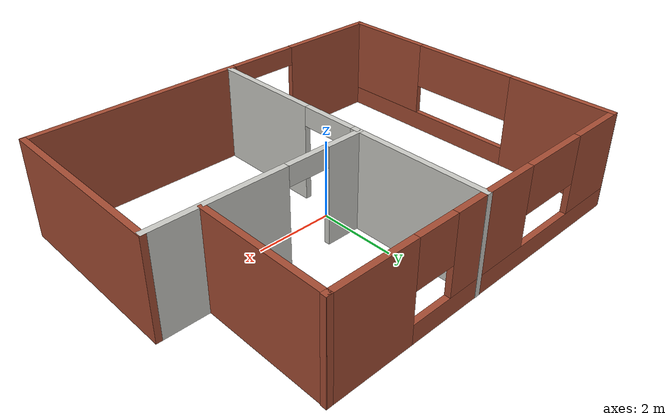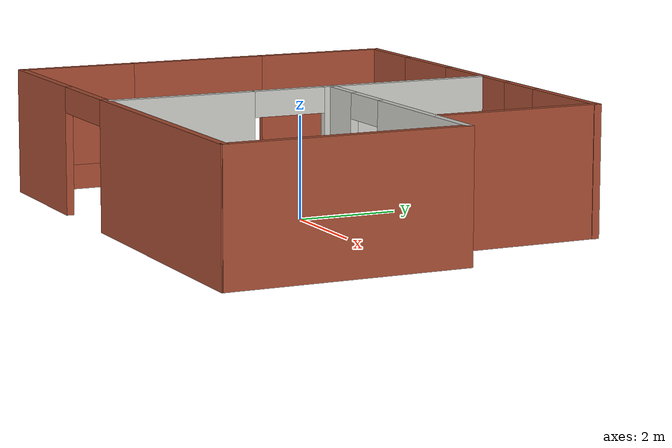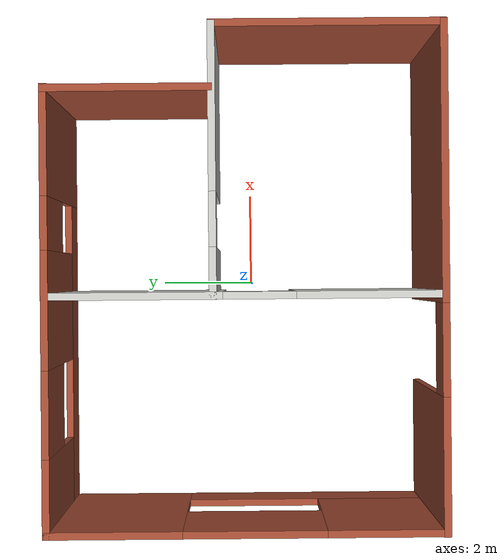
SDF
<?xml version='1.0'?>
<sdf version='1.6'>
  <model name='Bungalow'>
    <pose frame=''>0.093226 0.150218 0 0 -0 0</pose>
    <link name='Wall_13'>
      <pose frame=''>-0.007662 -3.96948 0 0 -0 0</pose>
      <visual name='Wall_13_Visual_0'>
        <pose frame=''>-3.74203 0 1.25 0 -0 0</pose>
        <geometry>
          <box>
            <size>2.76594 0.15 2.5</size>
          </box>
        </geometry>
        <material>
          <script>
            <uri>file://media/materials/scripts/gazebo.material</uri>
            <name>Gazebo/Bricks</name>
          </script>
          <ambient>1 1 1 1</ambient>
        </material>
        <meta>
          <layer>0</layer>
        </meta>
      </visual>
      <collision name='Wall_13_Collision_0'>
        <geometry>
          <box>
            <size>2.76594 0.15 2.5</size>
          </box>
        </geometry>
        <pose frame=''>-3.74203 0 1.25 0 -0 0</pose>
      </collision>
      <visual name='Wall_13_Visual_1'>
        <pose frame=''>2.31237 0 1.25 0 -0 0</pose>
        <geometry>
          <box>
            <size>5.62525 0.15 2.5</size>
          </box>
        </geometry>
        <material>
          <script>
            <uri>file://media/materials/scripts/gazebo.material</uri>
            <name>Gazebo/Bricks</name>
          </script>
          <ambient>1 1 1 1</ambient>
        </material>
        <meta>
          <layer>0</layer>
        </meta>
      </visual>
      <collision name='Wall_13_Collision_1'>
        <geometry>
          <box>
            <size>5.62525 0.15 2.5</size>
          </box>
        </geometry>
        <pose frame=''>2.31237 0 1.25 0 -0 0</pose>
      </collision>
      <visual name='Wall_13_Visual_2'>
        <pose frame=''>-1.42966 0 2.25 0 -0 0</pose>
        <geometry>
          <box>
            <size>1.85881 0.15 0.5</size>
          </box>
        </geometry>
        <material>
          <script>
            <uri>file://media/materials/scripts/gazebo.material</uri>
            <name>Gazebo/Bricks</name>
          </script>
          <ambient>1 1 1 1</ambient>
        </material>
        <meta>
          <layer>0</layer>
        </meta>
      </visual>
      <collision name='Wall_13_Collision_2'>
        <geometry>
          <box>
            <size>1.85881 0.15 0.5</size>
          </box>
        </geometry>
        <pose frame=''>-1.42966 0 2.25 0 -0 0</pose>
      </collision>
    </link>
    <link name='Wall_16'>
      <collision name='Wall_16_Collision'>
        <geometry>
          <box>
            <size>3.42399 0.15 2.5</size>
          </box>
        </geometry>
        <pose frame=''>0 0 1.25 0 -0 0</pose>
      </collision>
      <visual name='Wall_16_Visual'>
        <pose frame=''>0 0 1.25 0 -0 0</pose>
        <geometry>
          <box>
            <size>3.42399 0.15 2.5</size>
          </box>
        </geometry>
        <material>
          <script>
            <uri>file://media/materials/scripts/gazebo.material</uri>
            <name>Gazebo/Bricks</name>
          </script>
          <ambient>1 1 1 1</ambient>
        </material>
        <meta>
          <layer>0</layer>
        </meta>
      </visual>
      <pose frame=''>3.7988 2.32833 0 0 -0 1.5708</pose>
    </link>
    <link name='Wall_17'>
      <pose frame=''>-0.610992 3.96531 0 0 -0 3.14159</pose>
      <visual name='Wall_17_Visual_0'>
        <pose frame=''>-3.39009 0 1.25 0 -0 0</pose>
        <geometry>
          <box>
            <size>2.21983 0.15 2.5</size>
          </box>
        </geometry>
        <material>
          <script>
            <uri>file://media/materials/scripts/gazebo.material</uri>
            <name>Gazebo/Bricks</name>
          </script>
          <ambient>1 1 1 1</ambient>
        </material>
        <meta>
          <layer>0</layer>
        </meta>
      </visual>
      <collision name='Wall_17_Collision_0'>
        <geometry>
          <box>
            <size>2.21983 0.15 2.5</size>
          </box>
        </geometry>
        <pose frame=''>-3.39009 0 1.25 0 -0 0</pose>
      </collision>
      <visual name='Wall_17_Visual_1'>
        <pose frame=''>1.10991 0 0.25 0 -0 0</pose>
        <geometry>
          <box>
            <size>6.78017 0.15 0.5</size>
          </box>
        </geometry>
        <material>
          <script>
            <uri>file://media/materials/scripts/gazebo.material</uri>
            <name>Gazebo/Bricks</name>
          </script>
          <ambient>1 1 1 1</ambient>
        </material>
        <meta>
          <layer>0</layer>
        </meta>
      </visual>
      <collision name='Wall_17_Collision_1'>
        <geometry>
          <box>
            <size>6.78017 0.15 0.5</size>
          </box>
        </geometry>
        <pose frame=''>1.10991 0 0.25 0 -0 0</pose>
      </collision>
      <visual name='Wall_17_Visual_2'>
        <pose frame=''>-0.017098 0 1.5 0 -0 0</pose>
        <geometry>
          <box>
            <size>2.37863 0.15 2</size>
          </box>
        </geometry>
        <material>
          <script>
            <uri>file://media/materials/scripts/gazebo.material</uri>
            <name>Gazebo/Bricks</name>
          </script>
          <ambient>1 1 1 1</ambient>
        </material>
        <meta>
          <layer>0</layer>
        </meta>
      </visual>
      <collision name='Wall_17_Collision_2'>
        <geometry>
          <box>
            <size>2.37863 0.15 2</size>
          </box>
        </geometry>
        <pose frame=''>-0.017098 0 1.5 0 -0 0</pose>
      </collision>
      <visual name='Wall_17_Visual_3'>
        <pose frame=''>3.71518 0 1.5 0 -0 0</pose>
        <geometry>
          <box>
            <size>1.56963 0.15 2</size>
          </box>
        </geometry>
        <material>
          <script>
            <uri>file://media/materials/scripts/gazebo.material</uri>
            <name>Gazebo/Bricks</name>
          </script>
          <ambient>1 1 1 1</ambient>
        </material>
        <meta>
          <layer>0</layer>
        </meta>
      </visual>
      <collision name='Wall_17_Collision_3'>
        <geometry>
          <box>
            <size>1.56963 0.15 2</size>
          </box>
        </geometry>
        <pose frame=''>3.71518 0 1.5 0 -0 0</pose>
      </collision>
      <visual name='Wall_17_Visual_4'>
        <pose frame=''>-1.74329 0 1.9 0 -0 0</pose>
        <geometry>
          <box>
            <size>1.07376 0.15 1.2</size>
          </box>
        </geometry>
        <material>
          <script>
            <uri>file://media/materials/scripts/gazebo.material</uri>
            <name>Gazebo/Bricks</name>
          </script>
          <ambient>1 1 1 1</ambient>
        </material>
        <meta>
          <layer>0</layer>
        </meta>
      </visual>
      <collision name='Wall_17_Collision_4'>
        <geometry>
          <box>
            <size>1.07376 0.15 1.2</size>
          </box>
        </geometry>
        <pose frame=''>-1.74329 0 1.9 0 -0 0</pose>
      </collision>
      <visual name='Wall_17_Visual_5'>
        <pose frame=''>2.05129 0 1.9 0 -0 0</pose>
        <geometry>
          <box>
            <size>1.75815 0.15 1.2</size>
          </box>
        </geometry>
        <material>
          <script>
            <uri>file://media/materials/scripts/gazebo.material</uri>
            <name>Gazebo/Bricks</name>
          </script>
          <ambient>1 1 1 1</ambient>
        </material>
        <meta>
          <layer>0</layer>
        </meta>
      </visual>
      <collision name='Wall_17_Collision_5'>
        <geometry>
          <box>
            <size>1.75815 0.15 1.2</size>
          </box>
        </geometry>
        <pose frame=''>2.05129 0 1.9 0 -0 0</pose>
      </collision>
    </link>
    <link name='Wall_18'>
      <pose frame=''>-5.0512 0.032703 0 0 0 -1.5708</pose>
      <visual name='Wall_18_Visual_0'>
        <pose frame=''>-2.6209 0 1.25 0 -0 0</pose>
        <geometry>
          <box>
            <size>2.77342 0.15 2.5</size>
          </box>
        </geometry>
        <material>
          <script>
            <uri>file://media/materials/scripts/gazebo.material</uri>
            <name>Gazebo/Bricks</name>
          </script>
          <ambient>1 1 1 1</ambient>
        </material>
        <meta>
          <layer>0</layer>
        </meta>
      </visual>
      <collision name='Wall_18_Collision_0'>
        <geometry>
          <box>
            <size>2.77342 0.15 2.5</size>
          </box>
        </geometry>
        <pose frame=''>-2.6209 0 1.25 0 -0 0</pose>
      </collision>
      <visual name='Wall_18_Visual_1'>
        <pose frame=''>1.38671 0 0.25 0 -0 0</pose>
        <geometry>
          <box>
            <size>5.24181 0.15 0.5</size>
          </box>
        </geometry>
        <material>
          <script>
            <uri>file://media/materials/scripts/gazebo.material</uri>
            <name>Gazebo/Bricks</name>
          </script>
          <ambient>1 1 1 1</ambient>
        </material>
        <meta>
          <layer>0</layer>
        </meta>
      </visual>
      <collision name='Wall_18_Collision_1'>
        <geometry>
          <box>
            <size>5.24181 0.15 0.5</size>
          </box>
        </geometry>
        <pose frame=''>1.38671 0 0.25 0 -0 0</pose>
      </collision>
      <visual name='Wall_18_Visual_2'>
        <pose frame=''>2.8209 0 1.5 0 -0 0</pose>
        <geometry>
          <box>
            <size>2.37342 0.15 2</size>
          </box>
        </geometry>
        <material>
          <script>
            <uri>file://media/materials/scripts/gazebo.material</uri>
            <name>Gazebo/Bricks</name>
          </script>
          <ambient>1 1 1 1</ambient>
        </material>
        <meta>
          <layer>0</layer>
        </meta>
      </visual>
      <collision name='Wall_18_Collision_2'>
        <geometry>
          <box>
            <size>2.37342 0.15 2</size>
          </box>
        </geometry>
        <pose frame=''>2.8209 0 1.5 0 -0 0</pose>
      </collision>
      <visual name='Wall_18_Visual_3'>
        <pose frame=''>0.199999 0 1.9 0 -0 0</pose>
        <geometry>
          <box>
            <size>2.86839 0.15 1.2</size>
          </box>
        </geometry>
        <material>
          <script>
            <uri>file://media/materials/scripts/gazebo.material</uri>
            <name>Gazebo/Bricks</name>
          </script>
          <ambient>1 1 1 1</ambient>
        </material>
        <meta>
          <layer>0</layer>
        </meta>
      </visual>
      <collision name='Wall_18_Collision_3'>
        <geometry>
          <box>
            <size>2.86839 0.15 1.2</size>
          </box>
        </geometry>
        <pose frame=''>0.199999 0 1.9 0 -0 0</pose>
      </collision>
    </link>
    <link name='Wall_20'>
      <pose frame=''>-0.327741 0.044484 0 0 0 -1.5708</pose>
      <visual name='Wall_20_Visual_0'>
        <pose frame=''>-2.19615 0 1.25 0 -0 0</pose>
        <geometry>
          <box>
            <size>3.60771 0.15 2.5</size>
          </box>
        </geometry>
        <material>
          <script>
            <uri>file://media/materials/scripts/gazebo.material</uri>
            <name>Gazebo/CeilingTiled</name>
          </script>
          <ambient>1 1 1 1</ambient>
        </material>
        <meta>
          <layer>0</layer>
        </meta>
      </visual>
      <collision name='Wall_20_Collision_0'>
        <geometry>
          <box>
            <size>3.60771 0.15 2.5</size>
          </box>
        </geometry>
        <pose frame=''>-2.19615 0 1.25 0 -0 0</pose>
      </collision>
      <visual name='Wall_20_Visual_1'>
        <pose frame=''>2.53158 0 1.25 0 -0 0</pose>
        <geometry>
          <box>
            <size>2.93684 0.15 2.5</size>
          </box>
        </geometry>
        <material>
          <script>
            <uri>file://media/materials/scripts/gazebo.material</uri>
            <name>Gazebo/CeilingTiled</name>
          </script>
          <ambient>1 1 1 1</ambient>
        </material>
        <meta>
          <layer>0</layer>
        </meta>
      </visual>
      <collision name='Wall_20_Collision_1'>
        <geometry>
          <box>
            <size>2.93684 0.15 2.5</size>
          </box>
        </geometry>
        <pose frame=''>2.53158 0 1.25 0 -0 0</pose>
      </collision>
      <visual name='Wall_20_Visual_2'>
        <pose frame=''>0.335434 0 2.25 0 -0 0</pose>
        <geometry>
          <box>
            <size>1.45545 0.15 0.5</size>
          </box>
        </geometry>
        <material>
          <script>
            <uri>file://media/materials/scripts/gazebo.material</uri>
            <name>Gazebo/CeilingTiled</name>
          </script>
          <ambient>1 1 1 1</ambient>
        </material>
        <meta>
          <layer>0</layer>
        </meta>
      </visual>
      <collision name='Wall_20_Collision_2'>
        <geometry>
          <box>
            <size>1.45545 0.15 0.5</size>
          </box>
        </geometry>
        <pose frame=''>0.335434 0 2.25 0 -0 0</pose>
      </collision>
    </link>
    <link name='Wall_24'>
      <pose frame=''>2.35486 0.633863 0 0 -0 0</pose>
      <visual name='Wall_24_Visual_0'>
        <pose frame=''>-2.23848 0 1.25 0 -0 0</pose>
        <geometry>
          <box>
            <size>1.03824 0.15 2.5</size>
          </box>
        </geometry>
        <material>
          <script>
            <uri>file://media/materials/scripts/gazebo.material</uri>
            <name>Gazebo/CeilingTiled</name>
          </script>
          <ambient>1 1 1 1</ambient>
        </material>
        <meta>
          <layer>0</layer>
        </meta>
      </visual>
      <collision name='Wall_24_Collision_0'>
        <geometry>
          <box>
            <size>1.03824 0.15 2.5</size>
          </box>
        </geometry>
        <pose frame=''>-2.23848 0 1.25 0 -0 0</pose>
      </collision>
      <visual name='Wall_24_Visual_1'>
        <pose frame=''>1.06969 0 1.25 0 -0 0</pose>
        <geometry>
          <box>
            <size>3.37583 0.15 2.5</size>
          </box>
        </geometry>
        <material>
          <script>
            <uri>file://media/materials/scripts/gazebo.material</uri>
            <name>Gazebo/CeilingTiled</name>
          </script>
          <ambient>1 1 1 1</ambient>
        </material>
        <meta>
          <layer>0</layer>
        </meta>
      </visual>
      <collision name='Wall_24_Collision_1'>
        <geometry>
          <box>
            <size>3.37583 0.15 2.5</size>
          </box>
        </geometry>
        <pose frame=''>1.06969 0 1.25 0 -0 0</pose>
      </collision>
      <visual name='Wall_24_Visual_2'>
        <pose frame=''>-1.1688 0 2.25 0 -0 0</pose>
        <geometry>
          <box>
            <size>1.10114 0.15 0.5</size>
          </box>
        </geometry>
        <material>
          <script>
            <uri>file://media/materials/scripts/gazebo.material</uri>
            <name>Gazebo/CeilingTiled</name>
          </script>
          <ambient>1 1 1 1</ambient>
        </material>
        <meta>
          <layer>0</layer>
        </meta>
      </visual>
      <collision name='Wall_24_Collision_2'>
        <geometry>
          <box>
            <size>1.10114 0.15 0.5</size>
          </box>
        </geometry>
        <pose frame=''>-1.1688 0 2.25 0 -0 0</pose>
      </collision>
    </link>
    <link name='Wall_29'>
      <collision name='Wall_29_Collision'>
        <geometry>
          <box>
            <size>4.73035 0.15 2.5</size>
          </box>
        </geometry>
        <pose frame=''>0 0 1.25 0 -0 0</pose>
      </collision>
      <visual name='Wall_29_Visual'>
        <pose frame=''>0 0 1.25 0 -0 0</pose>
        <geometry>
          <box>
            <size>4.73035 0.15 2.5</size>
          </box>
        </geometry>
        <material>
          <script>
            <uri>file://media/materials/scripts/gazebo.material</uri>
            <name>Gazebo/Bricks</name>
          </script>
          <ambient>0.921569 0.807843 0.615686 1</ambient>
        </material>
        <meta>
          <layer>0</layer>
        </meta>
      </visual>
      <pose frame=''>5.05513 -1.65608 0 0 0 -1.57187</pose>
    </link>
    <static>1</static>
  </model>
</sdf>
